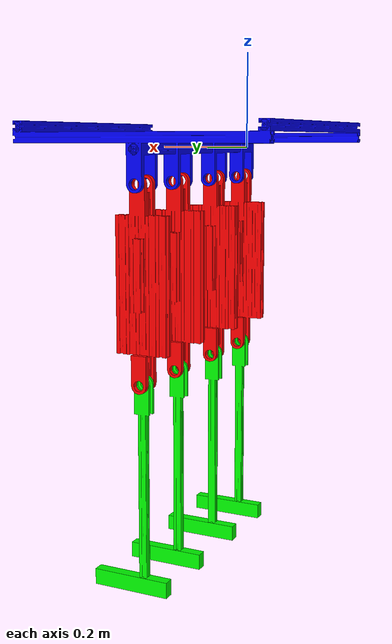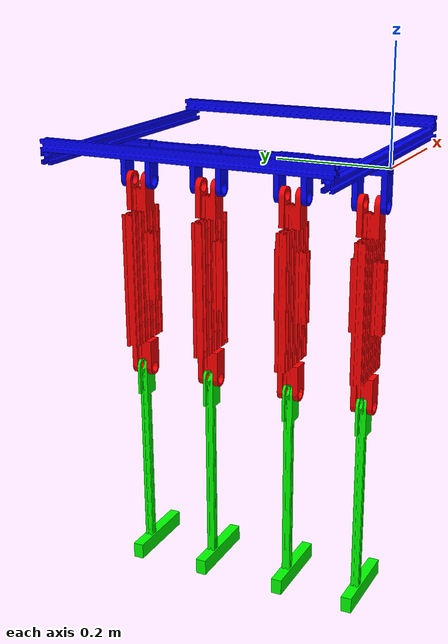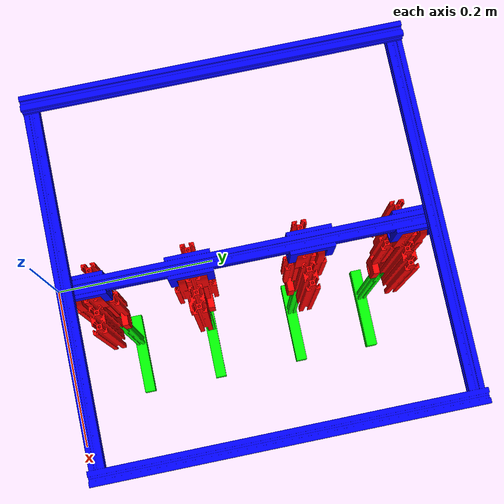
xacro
<?xml version = "1.0"?>
<robot name = "test_walker1" xmlns:xacro = "https://ros.org/wiki/xacro">

	<xacro:property name = "length" value = "0.5"/>
	<xacro:property name = "length2" value = "0.1"/>

	<material name = "red">
		<color rgba = "1.0 0.0 0.0 1.0"/>
	</material>

	<material name = "green">
		<color rgba = "0.0 1.0 0.0 1.0"/>
	</material>

	<material name = "blue">
		<color rgba = "0.0 0.0 1.0 1.0"/>
	</material>

	<xacro:macro name="link_macro" params="name xyz ixx ixy ixz iyy iyz izz mass filename color">
		<link name="${name}">
			<inertial>
				<origin xyz = "${xyz}" rpy = "0 0 0"/>
				<mass value="${mass}"/>
				<inertia ixx="${ixx}" ixy="${ixy}"  ixz="${ixz}" iyy="${iyy}" iyz="${iyz}" izz="${izz}"/>
			</inertial>
			<visual>
				<origin xyz = "0 0 0" rpy = "0 0 0"/>
				<geometry>
					<mesh filename = "${filename}"/>
				</geometry>
				<xacro:if value = "${color == 'red'}">
					<material name = "red"/>
				</xacro:if>
				<xacro:if value = "${color == 'green'}">
					<material name = "green"/>
				</xacro:if>
				<xacro:if value = "${color == 'blue'}">
					<material name = "blue"/>
				</xacro:if>

			</visual>
			<collision>
				<origin xyz = "0 0 0" rpy = "0 0 0"/>
				<geometry>
					<mesh filename = "${filename}"/>
				</geometry>
			</collision>
		</link>
	</xacro:macro>

	<xacro:macro name="joint_macro" params="name xyz rpy parent child type">
		<joint name="${name}" type="${type}">
			<parent link="${parent}"/>
			<child link="${child}"/>
			<axis xyz="0 1 0"/>
			<origin xyz="${xyz}" rpy="${rpy}"/>
			<dynamics damping="0.02"/>
			<limit lower="-2.5" upper="2.5" effort="8.0" velocity="6.0"/>
		</joint>
	</xacro:macro>

	<xacro:macro name="trans_macro" params="name joint_name act_name">
		<transmission name="${name}">
			<type>transmission_interface/SimpleTransmission</type>
			<joint name="${joint_name}">
				<hardwareInterface>hardware_interface/EffortJointInterface</hardwareInterface>
			</joint>
			<actuator name="${act_name}">
				<hardwareInterface>hardware_interface/EffortJointInterface</hardwareInterface>
				<mechanismReduction>1</mechanismReduction>
			</actuator>
		</transmission>
	</xacro:macro>

	<xacro:link_macro name="base_link" xyz = "0 0.25 0.010157" ixx="0.05806957271" ixy="0.0" ixz="0.0" iyy="0.04009091132" iyz="0.0" izz="0.09532090102" mass="1.692224" filename = "stl/test_walker-base.stl" color="blue"/>

	<xacro:joint_macro name="hip_joint1" xyz="0 0.03 -0.06" rpy="0.0 0.0 0.0" parent="base_link" child="thigh_link1" type="revolute"/>
	<xacro:trans_macro name="hip_joint1_trans" joint_name="hip_joint1" act_name="hip_motor1"/>
	<xacro:link_macro name="thigh_link1" xyz = "0 0 -0.177168" ixx="0.008759550907" ixy="0.0" ixz="0.0" iyy="0.009172527951" iyz="0.0" izz="0.000664142121" mass="0.964319" filename = "stl/test_walker1-thigh.stl" color="red"/>
	<xacro:joint_macro name="knee_joint1" xyz="0.0 0.0 -0.359" rpy="0.0 0.0 0.0" parent="thigh_link1" child="shin_link1" type="revolute"/>
	<xacro:trans_macro name="knee_joint1_trans" joint_name="knee_joint1" act_name="knee_motor1"/>
	<xacro:link_macro name="shin_link1" xyz = "0.01097 0.0 -0.24764" ixx="0.006133731562" ixy="0.0" ixz="0.000424378116" iyy="0.006415913276" iyz="0.0" izz="0.000301351016" mass="0.292265" filename = "stl/test_walker1-shin.stl" color="green"/>

	<xacro:joint_macro name="hip_joint2" xyz="0 0.17 -0.06" rpy="0.0 0.0 0.0" parent="base_link" child="thigh_link2" type="revolute"/>
	<xacro:trans_macro name="hip_joint2_trans" joint_name="hip_joint2" act_name="hip_motor2"/>
	<xacro:link_macro name="thigh_link2" xyz = "0 0 -0.177168" ixx="0.008759550907" ixy="0.0" ixz="0.0" iyy="0.009172527951" iyz="0.0" izz="0.000664142121" mass="0.964319" filename = "stl/test_walker1-thigh.stl" color="red"/>
	<xacro:joint_macro name="knee_joint2" xyz="0.0 0.0 -0.359" rpy="0.0 0.0 0.0" parent="thigh_link2" child="shin_link2" type="revolute"/>
	<xacro:trans_macro name="knee_joint2_trans" joint_name="knee_joint2" act_name="knee_motor2"/>
	<xacro:link_macro name="shin_link2" xyz = "0.01097 0.0 -0.24764" ixx="0.006133731562" ixy="0.0" ixz="0.000424378116" iyy="0.006415913276" iyz="0.0" izz="0.000301351016" mass="0.292265" filename = "stl/test_walker1-shin.stl" color="green"/>

	<xacro:joint_macro name="hip_joint3" xyz="0 0.33 -0.06" rpy="0.0 0.0 0.0" parent="base_link" child="thigh_link3" type="revolute"/>
	<xacro:trans_macro name="hip_joint3_trans" joint_name="hip_joint3" act_name="hip_motor3"/>
	<xacro:link_macro name="thigh_link3" xyz = "0 0 -0.177168" ixx="0.008759550907" ixy="0.0" ixz="0.0" iyy="0.009172527951" iyz="0.0" izz="0.000664142121" mass="0.964319" filename = "stl/test_walker1-thigh.stl" color="red"/>
	<xacro:joint_macro name="knee_joint3" xyz="0.0 0.0 -0.359" rpy="0.0 0.0 0.0" parent="thigh_link3" child="shin_link3" type="revolute"/>
	<xacro:trans_macro name="knee_joint3_trans" joint_name="knee_joint3" act_name="knee_motor3"/>
	<xacro:link_macro name="shin_link3" xyz = "0.01097 0.0 -0.24764" ixx="0.006133731562" ixy="0.0" ixz="0.000424378116" iyy="0.006415913276" iyz="0.0" izz="0.000301351016" mass="0.292265" filename = "stl/test_walker1-shin.stl" color="green"/>

	<xacro:joint_macro name="hip_joint4" xyz="0 0.47 -0.06" rpy="0.0 0.0 0.0" parent="base_link" child="thigh_link4" type="revolute"/>
	<xacro:trans_macro name="hip_joint4_trans" joint_name="hip_joint4" act_name="hip_motor4"/>
	<xacro:link_macro name="thigh_link4" xyz = "0 0 -0.177168" ixx="0.008759550907" ixy="0.0" ixz="0.0" iyy="0.009172527951" iyz="0.0" izz="0.000664142121" mass="0.964319" filename = "stl/test_walker1-thigh.stl" color="red"/>
	<xacro:joint_macro name="knee_joint4" xyz="0.0 0.0 -0.359" rpy="0.0 0.0 0.0" parent="thigh_link4" child="shin_link4" type="revolute"/>
	<xacro:trans_macro name="knee_joint4_trans" joint_name="knee_joint4" act_name="knee_motor4"/>
	<xacro:link_macro name="shin_link4" xyz = "0.01097 0.0 -0.24764" ixx="0.006133731562" ixy="0.0" ixz="0.000424378116" iyy="0.006415913276" iyz="0.0" izz="0.000301351016" mass="0.292265" filename = "stl/test_walker1-shin.stl" color="green"/>

</robot>
